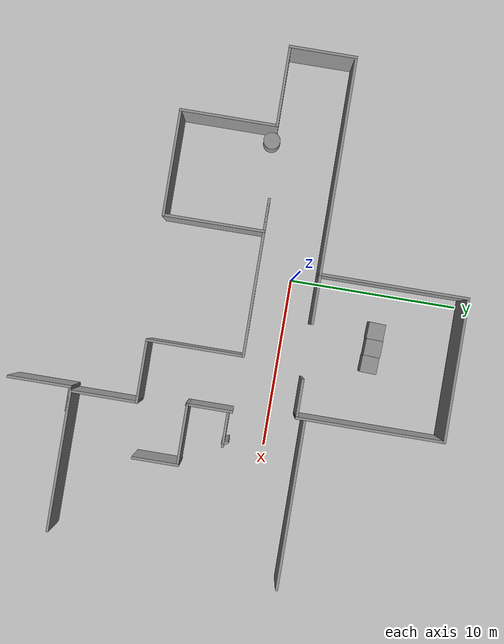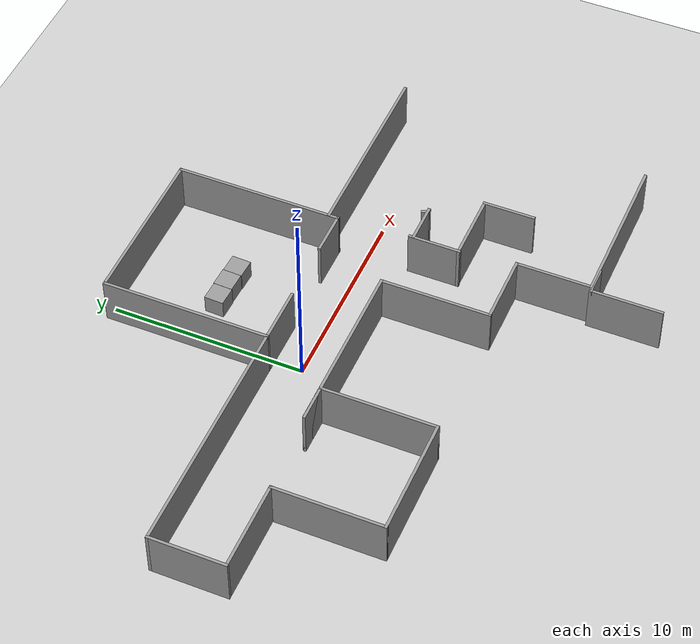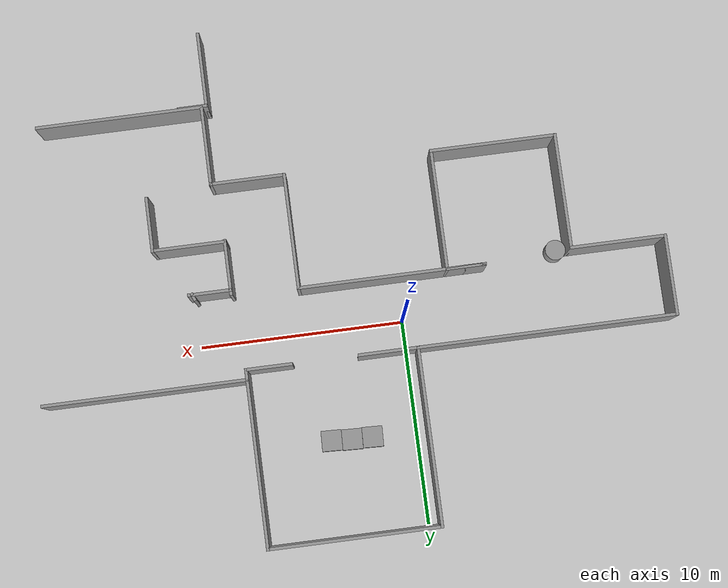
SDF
<sdf version="1.7">
 <world name="default">
  <model name="ground_plane">
   <static>1</static>
   <link name="link">
    <collision name="collision">
     <geometry><plane><normal>0 0 1</normal><size>100 100</size></plane></geometry>
     <surface><friction><ode><mu>100</mu><mu2>50</mu2></ode></friction></surface>
    </collision>
    <visual name="visual">
     <cast_shadows>0</cast_shadows>
     <geometry><plane><normal>0 0 1</normal><size>100 100</size></plane></geometry>
     <material>
      <script><uri>file://media/materials/scripts/gazebo.material</uri><name>Gazebo/Grey</name></script>
     </material>
    </visual>
   </link>
  </model>
  <model name="unit_box_clone">
   <pose>2.18484 5.44265 0.499995 1e-05 -0 -0.037521</pose>
   <link name="link">
    <inertial>
     <mass>1</mass>
     <inertia>
      <ixx>0.166667</ixx>
      <ixy>0</ixy>
      <ixz>0</ixz>
      <iyy>0.166667</iyy>
      <iyz>0</iyz>
      <izz>0.166667</izz>
     </inertia>
    </inertial>
    <collision name="collision"><geometry><box><size>1 1 1</size></box></geometry></collision>
    <visual name="visual">
     <geometry><box><size>1 1 1</size></box></geometry>
     <material>
      <script><name>Gazebo/Grey</name><uri>file://media/materials/scripts/gazebo.material</uri></script>
     </material>
    </visual>
   </link>
  </model>
  <model name="unit_box_clone_0">
   <pose>3.18636 5.43113 0.499995 -0 1e-05 -0.035691</pose>
   <link name="link">
    <inertial>
     <mass>1</mass>
     <inertia>
      <ixx>0.166667</ixx>
      <ixy>0</ixy>
      <ixz>0</ixz>
      <iyy>0.166667</iyy>
      <iyz>0</iyz>
      <izz>0.166667</izz>
     </inertia>
    </inertial>
    <collision name="collision"><geometry><box><size>1 1 1</size></box></geometry></collision>
    <visual name="visual">
     <geometry><box><size>1 1 1</size></box></geometry>
     <material>
      <script><name>Gazebo/Grey</name><uri>file://media/materials/scripts/gazebo.material</uri></script>
     </material>
    </visual>
   </link>
  </model>
  <model name="unit_box_clone_1">
   <pose>4.18492 5.37179 0.499995 0 1e-05 -0.035732</pose>
   <link name="link">
    <inertial>
     <mass>1</mass>
     <inertia>
      <ixx>0.166667</ixx>
      <ixy>0</ixy>
      <ixz>0</ixz>
      <iyy>0.166667</iyy>
      <iyz>0</iyz>
      <izz>0.166667</izz>
     </inertia>
    </inertial>
    <collision name="collision"><geometry><box><size>1 1 1</size></box></geometry></collision>
    <visual name="visual">
     <geometry><box><size>1 1 1</size></box></geometry>
     <material>
      <script><name>Gazebo/Grey</name><uri>file://media/materials/scripts/gazebo.material</uri></script>
     </material>
    </visual>
   </link>
  </model>
  <model name="unit_cylinder_clone">
   <pose>-7.94709 -2.49222 0.499997 3e-06 2e-06 0</pose>
   <link name="link">
    <inertial>
     <mass>1</mass>
     <inertia><ixx>0.145833</ixx><ixy>0</ixy><ixz>0</ixz><iyy>0.145833</iyy><iyz>0</iyz><izz>0.125</izz></inertia>
    </inertial>
    <collision name="collision">
     <geometry><cylinder><radius>0.5</radius><length>1</length></cylinder></geometry>
    </collision>
    <visual name="visual">
     <geometry><cylinder><radius>0.5</radius><length>1</length></cylinder></geometry>
     <material>
      <script><name>Gazebo/Grey</name><uri>file://media/materials/scripts/gazebo.material</uri></script>
     </material>
    </visual>
   </link>
  </model>
  <model name="complex_clutter_env">
   <link name="Wall_0">
    <pose>-25.125 0.163907 0 0 0 -1.5708</pose>
    <visual name="Wall_0_Visual">
     <pose>0 0 1.25 0 -0 0</pose>
     <geometry><box><size>4 0.15 2.5</size></box></geometry>
     <material>
      <script><uri>file://media/materials/scripts/gazebo.material</uri><name>Gazebo/Grey</name></script>
      <ambient>1 1 1 1</ambient>
      <shader type="pixel"/>
     </material>
     <meta><layer>0</layer></meta>
    </visual>
    <collision name="Wall_0_Collision">
     <pose>0 0 1.25 0 -0 0</pose>
     <geometry><box><size>4 0.15 2.5</size></box></geometry>
     <surface>
      <friction>
       <ode><mu>1</mu><mu2>1</mu2><fdir1>0 0 0</fdir1><slip1>0</slip1><slip2>0</slip2></ode>
       <torsional>
        <coefficient>1</coefficient>
        <patch_radius>0</patch_radius>
        <surface_radius>0</surface_radius>
        <use_patch_radius>1</use_patch_radius>
        <ode><slip>0</slip></ode>
       </torsional>
      </friction>
      <bounce><restitution_coefficient>0</restitution_coefficient><threshold>1e+06</threshold></bounce>
      <contact>
       <collide_without_contact>0</collide_without_contact>
       <collide_without_contact_bitmask>1</collide_without_contact_bitmask>
       <collide_bitmask>1</collide_bitmask>
       <ode>
        <soft_cfm>0</soft_cfm>
        <soft_erp>0.2</soft_erp>
        <kp>1e+13</kp>
        <kd>1</kd>
        <max_vel>0.01</max_vel>
        <min_depth>0</min_depth>
       </ode>
       <bullet>
        <split_impulse>1</split_impulse>
        <split_impulse_penetration_threshold>-0.01</split_impulse_penetration_threshold>
        <soft_cfm>0</soft_cfm>
        <soft_erp>0.2</soft_erp>
        <kp>1e+13</kp>
        <kd>1</kd>
       </bullet>
      </contact>
     </surface>
    </collision>
   </link>
   <link name="Wall_1">
    <pose>-22.825 -1.76109 0 0 -0 0</pose>
    <visual name="Wall_1_Visual">
     <pose>0 0 1.25 0 -0 0</pose>
     <geometry><box><size>4.75 0.15 2.5</size></box></geometry>
     <material>
      <script><uri>file://media/materials/scripts/gazebo.material</uri><name>Gazebo/Grey</name></script>
      <ambient>1 1 1 1</ambient>
      <shader type="pixel"/>
     </material>
     <meta><layer>0</layer></meta>
    </visual>
    <collision name="Wall_1_Collision">
     <pose>0 0 1.25 0 -0 0</pose>
     <geometry><box><size>4.75 0.15 2.5</size></box></geometry>
     <surface>
      <friction>
       <ode><mu>1</mu><mu2>1</mu2><fdir1>0 0 0</fdir1><slip1>0</slip1><slip2>0</slip2></ode>
       <torsional>
        <coefficient>1</coefficient>
        <patch_radius>0</patch_radius>
        <surface_radius>0</surface_radius>
        <use_patch_radius>1</use_patch_radius>
        <ode><slip>0</slip></ode>
       </torsional>
      </friction>
      <bounce><restitution_coefficient>0</restitution_coefficient><threshold>1e+06</threshold></bounce>
      <contact>
       <collide_without_contact>0</collide_without_contact>
       <collide_without_contact_bitmask>1</collide_without_contact_bitmask>
       <collide_bitmask>1</collide_bitmask>
       <ode>
        <soft_cfm>0</soft_cfm>
        <soft_erp>0.2</soft_erp>
        <kp>1e+13</kp>
        <kd>1</kd>
        <max_vel>0.01</max_vel>
        <min_depth>0</min_depth>
       </ode>
       <bullet>
        <split_impulse>1</split_impulse>
        <split_impulse_penetration_threshold>-0.01</split_impulse_penetration_threshold>
        <soft_cfm>0</soft_cfm>
        <soft_erp>0.2</soft_erp>
        <kp>1e+13</kp>
        <kd>1</kd>
       </bullet>
      </contact>
     </surface>
    </collision>
   </link>
   <link name="Wall_10">
    <pose>0.474999 -10.9611 0 0 -0 0</pose>
    <visual name="Wall_10_Visual">
     <pose>0 0 1.25 0 -0 0</pose>
     <geometry><box><size>8.25 0.15 2.5</size></box></geometry>
     <material>
      <script><uri>file://media/materials/scripts/gazebo.material</uri><name>Gazebo/Grey</name></script>
      <ambient>1 1 1 1</ambient>
      <shader type="pixel"/>
     </material>
     <meta><layer>0</layer></meta>
    </visual>
    <collision name="Wall_10_Collision">
     <pose>0 0 1.25 0 -0 0</pose>
     <geometry><box><size>8.25 0.15 2.5</size></box></geometry>
     <surface>
      <friction>
       <ode><mu>1</mu><mu2>1</mu2><fdir1>0 0 0</fdir1><slip1>0</slip1><slip2>0</slip2></ode>
       <torsional>
        <coefficient>1</coefficient>
        <patch_radius>0</patch_radius>
        <surface_radius>0</surface_radius>
        <use_patch_radius>1</use_patch_radius>
        <ode><slip>0</slip></ode>
       </torsional>
      </friction>
      <bounce><restitution_coefficient>0</restitution_coefficient><threshold>1e+06</threshold></bounce>
      <contact>
       <collide_without_contact>0</collide_without_contact>
       <collide_without_contact_bitmask>1</collide_without_contact_bitmask>
       <collide_bitmask>1</collide_bitmask>
       <ode>
        <soft_cfm>0</soft_cfm>
        <soft_erp>0.2</soft_erp>
        <kp>1e+13</kp>
        <kd>1</kd>
        <max_vel>0.01</max_vel>
        <min_depth>0</min_depth>
       </ode>
       <bullet>
        <split_impulse>1</split_impulse>
        <split_impulse_penetration_threshold>-0.01</split_impulse_penetration_threshold>
        <soft_cfm>0</soft_cfm>
        <soft_erp>0.2</soft_erp>
        <kp>1e+13</kp>
        <kd>1</kd>
       </bullet>
      </contact>
     </surface>
    </collision>
   </link>
   <link name="Wall_2">
    <pose>-20.525 -4.56109 0 0 0 -1.5708</pose>
    <visual name="Wall_2_Visual">
     <pose>0 0 1.25 0 -0 0</pose>
     <geometry><box><size>5.75 0.15 2.5</size></box></geometry>
     <material>
      <script><uri>file://media/materials/scripts/gazebo.material</uri><name>Gazebo/Grey</name></script>
      <ambient>1 1 1 1</ambient>
      <shader type="pixel"/>
     </material>
     <meta><layer>0</layer></meta>
    </visual>
    <collision name="Wall_2_Collision">
     <pose>0 0 1.25 0 -0 0</pose>
     <geometry><box><size>5.75 0.15 2.5</size></box></geometry>
     <surface>
      <friction>
       <ode><mu>1</mu><mu2>1</mu2><fdir1>0 0 0</fdir1><slip1>0</slip1><slip2>0</slip2></ode>
       <torsional>
        <coefficient>1</coefficient>
        <patch_radius>0</patch_radius>
        <surface_radius>0</surface_radius>
        <use_patch_radius>1</use_patch_radius>
        <ode><slip>0</slip></ode>
       </torsional>
      </friction>
      <bounce><restitution_coefficient>0</restitution_coefficient><threshold>1e+06</threshold></bounce>
      <contact>
       <collide_without_contact>0</collide_without_contact>
       <collide_without_contact_bitmask>1</collide_without_contact_bitmask>
       <collide_bitmask>1</collide_bitmask>
       <ode>
        <soft_cfm>0</soft_cfm>
        <soft_erp>0.2</soft_erp>
        <kp>1e+13</kp>
        <kd>1</kd>
        <max_vel>0.01</max_vel>
        <min_depth>0</min_depth>
       </ode>
       <bullet>
        <split_impulse>1</split_impulse>
        <split_impulse_penetration_threshold>-0.01</split_impulse_penetration_threshold>
        <soft_cfm>0</soft_cfm>
        <soft_erp>0.2</soft_erp>
        <kp>1e+13</kp>
        <kd>1</kd>
       </bullet>
      </contact>
     </surface>
    </collision>
   </link>
   <link name="Wall_20">
    <pose>-0.38502 -5.50822 0 0 -0 1.5708</pose>
    <visual name="Wall_20_Visual">
     <pose>0 0 1.25 0 -0 0</pose>
     <geometry><box><size>2.75 0.15 2.5</size></box></geometry>
     <material>
      <script><uri>file://media/materials/scripts/gazebo.material</uri><name>Gazebo/Grey</name></script>
      <ambient>1 1 1 1</ambient>
      <shader type="pixel"/>
     </material>
     <meta><layer>0</layer></meta>
    </visual>
    <collision name="Wall_20_Collision">
     <pose>0 0 1.25 0 -0 0</pose>
     <geometry><box><size>2.75 0.15 2.5</size></box></geometry>
     <surface>
      <friction>
       <ode><mu>1</mu><mu2>1</mu2><fdir1>0 0 0</fdir1><slip1>0</slip1><slip2>0</slip2></ode>
       <torsional>
        <coefficient>1</coefficient>
        <patch_radius>0</patch_radius>
        <surface_radius>0</surface_radius>
        <use_patch_radius>1</use_patch_radius>
        <ode><slip>0</slip></ode>
       </torsional>
      </friction>
      <bounce><restitution_coefficient>0</restitution_coefficient><threshold>1e+06</threshold></bounce>
      <contact>
       <collide_without_contact>0</collide_without_contact>
       <collide_without_contact_bitmask>1</collide_without_contact_bitmask>
       <collide_bitmask>1</collide_bitmask>
       <ode>
        <soft_cfm>0</soft_cfm>
        <soft_erp>0.2</soft_erp>
        <kp>1e+13</kp>
        <kd>1</kd>
        <max_vel>0.01</max_vel>
        <min_depth>0</min_depth>
       </ode>
       <bullet>
        <split_impulse>1</split_impulse>
        <split_impulse_penetration_threshold>-0.01</split_impulse_penetration_threshold>
        <soft_cfm>0</soft_cfm>
        <soft_erp>0.2</soft_erp>
        <kp>1e+13</kp>
        <kd>1</kd>
       </bullet>
      </contact>
     </surface>
    </collision>
   </link>
   <link name="Wall_21">
    <pose>-2.21136 -4.22012 0 0 -0 3.14159</pose>
    <inertial>
     <inertia><ixx>0</ixx><ixy>0</ixy><ixz>0</ixz><iyy>0</iyy><iyz>0</iyz><izz>0</izz></inertia>
     <mass>0</mass>
    </inertial>
    <visual name="Wall_21_Visual">
     <pose>0 0 1.25 0 -0 0</pose>
     <geometry><box><size>3.55406 0.15 2.5</size></box></geometry>
     <material>
      <script><uri>file://media/materials/scripts/gazebo.material</uri><name>Gazebo/Grey</name></script>
      <ambient>1 1 1 1</ambient>
      <shader type="pixel"/>
     </material>
     <meta><layer>0</layer></meta>
    </visual>
    <collision name="Wall_21_Collision">
     <pose>0 0 1.25 0 -0 0</pose>
     <geometry><box><size>3.55406 0.15 2.5</size></box></geometry>
     <surface>
      <friction>
       <ode><mu>1</mu><mu2>1</mu2><fdir1>0 0 0</fdir1><slip1>0</slip1><slip2>0</slip2></ode>
       <torsional>
        <coefficient>1</coefficient>
        <patch_radius>0</patch_radius>
        <surface_radius>0</surface_radius>
        <use_patch_radius>1</use_patch_radius>
        <ode><slip>0</slip></ode>
       </torsional>
      </friction>
      <bounce><restitution_coefficient>0</restitution_coefficient><threshold>1e+06</threshold></bounce>
      <contact>
       <collide_without_contact>0</collide_without_contact>
       <collide_without_contact_bitmask>1</collide_without_contact_bitmask>
       <collide_bitmask>1</collide_bitmask>
       <ode>
        <soft_cfm>0</soft_cfm>
        <soft_erp>0.2</soft_erp>
        <kp>1e+13</kp>
        <kd>1</kd>
        <max_vel>0.01</max_vel>
        <min_depth>0</min_depth>
       </ode>
       <bullet>
        <split_impulse>1</split_impulse>
        <split_impulse_penetration_threshold>-0.01</split_impulse_penetration_threshold>
        <soft_cfm>0</soft_cfm>
        <soft_erp>0.2</soft_erp>
        <kp>1e+13</kp>
        <kd>1</kd>
       </bullet>
      </contact>
     </surface>
    </collision>
   </link>
   <link name="Wall_22">
    <pose>-3.91022 -2.95498 0 0 -0 1.5708</pose>
    <visual name="Wall_22_Visual">
     <pose>0 0 1.25 0 -0 0</pose>
     <geometry><box><size>2.75 0.15 2.5</size></box></geometry>
     <material>
      <script><uri>file://media/materials/scripts/gazebo.material</uri><name>Gazebo/Grey</name></script>
      <ambient>1 1 1 1</ambient>
      <shader type="pixel"/>
     </material>
     <meta><layer>0</layer></meta>
    </visual>
    <collision name="Wall_22_Collision">
     <pose>0 0 1.25 0 -0 0</pose>
     <geometry><box><size>2.75 0.15 2.5</size></box></geometry>
     <surface>
      <friction>
       <ode><mu>1</mu><mu2>1</mu2><fdir1>0 0 0</fdir1><slip1>0</slip1><slip2>0</slip2></ode>
       <torsional>
        <coefficient>1</coefficient>
        <patch_radius>0</patch_radius>
        <surface_radius>0</surface_radius>
        <use_patch_radius>1</use_patch_radius>
        <ode><slip>0</slip></ode>
       </torsional>
      </friction>
      <bounce><restitution_coefficient>0</restitution_coefficient><threshold>1e+06</threshold></bounce>
      <contact>
       <collide_without_contact>0</collide_without_contact>
       <collide_without_contact_bitmask>1</collide_without_contact_bitmask>
       <collide_bitmask>1</collide_bitmask>
       <ode>
        <soft_cfm>0</soft_cfm>
        <soft_erp>0.2</soft_erp>
        <kp>1e+13</kp>
        <kd>1</kd>
        <max_vel>0.01</max_vel>
        <min_depth>0</min_depth>
       </ode>
       <bullet>
        <split_impulse>1</split_impulse>
        <split_impulse_penetration_threshold>-0.01</split_impulse_penetration_threshold>
        <soft_cfm>0</soft_cfm>
        <soft_erp>0.2</soft_erp>
        <kp>1e+13</kp>
        <kd>1</kd>
       </bullet>
      </contact>
     </surface>
    </collision>
   </link>
   <link name="Wall_28">
    <pose>-18.825 2.08891 0 0 -0 0</pose>
    <visual name="Wall_28_Visual">
     <pose>0 0 1.25 0 -0 0</pose>
     <geometry><box><size>12.75 0.15 2.5</size></box></geometry>
     <material>
      <script><uri>file://media/materials/scripts/gazebo.material</uri><name>Gazebo/Grey</name></script>
      <ambient>1 1 1 1</ambient>
      <shader type="pixel"/>
     </material>
     <meta><layer>0</layer></meta>
    </visual>
    <collision name="Wall_28_Collision">
     <pose>0 0 1.25 0 -0 0</pose>
     <geometry><box><size>12.75 0.15 2.5</size></box></geometry>
     <surface>
      <friction>
       <ode><mu>1</mu><mu2>1</mu2><fdir1>0 0 0</fdir1><slip1>0</slip1><slip2>0</slip2></ode>
       <torsional>
        <coefficient>1</coefficient>
        <patch_radius>0</patch_radius>
        <surface_radius>0</surface_radius>
        <use_patch_radius>1</use_patch_radius>
        <ode><slip>0</slip></ode>
       </torsional>
      </friction>
      <bounce><restitution_coefficient>0</restitution_coefficient><threshold>1e+06</threshold></bounce>
      <contact>
       <collide_without_contact>0</collide_without_contact>
       <collide_without_contact_bitmask>1</collide_without_contact_bitmask>
       <collide_bitmask>1</collide_bitmask>
       <ode>
        <soft_cfm>0</soft_cfm>
        <soft_erp>0.2</soft_erp>
        <kp>1e+13</kp>
        <kd>1</kd>
        <max_vel>0.01</max_vel>
        <min_depth>0</min_depth>
       </ode>
       <bullet>
        <split_impulse>1</split_impulse>
        <split_impulse_penetration_threshold>-0.01</split_impulse_penetration_threshold>
        <soft_cfm>0</soft_cfm>
        <soft_erp>0.2</soft_erp>
        <kp>1e+13</kp>
        <kd>1</kd>
       </bullet>
      </contact>
     </surface>
    </collision>
   </link>
   <link name="Wall_29">
    <pose>-12.525 6.38891 0 0 -0 1.5708</pose>
    <visual name="Wall_29_Visual">
     <pose>0 0 1.25 0 -0 0</pose>
     <geometry><box><size>8.75 0.15 2.5</size></box></geometry>
     <material>
      <script><uri>file://media/materials/scripts/gazebo.material</uri><name>Gazebo/Grey</name></script>
      <ambient>1 1 1 1</ambient>
      <shader type="pixel"/>
     </material>
     <meta><layer>0</layer></meta>
    </visual>
    <collision name="Wall_29_Collision">
     <pose>0 0 1.25 0 -0 0</pose>
     <geometry><box><size>8.75 0.15 2.5</size></box></geometry>
     <surface>
      <friction>
       <ode><mu>1</mu><mu2>1</mu2><fdir1>0 0 0</fdir1><slip1>0</slip1><slip2>0</slip2></ode>
       <torsional>
        <coefficient>1</coefficient>
        <patch_radius>0</patch_radius>
        <surface_radius>0</surface_radius>
        <use_patch_radius>1</use_patch_radius>
        <ode><slip>0</slip></ode>
       </torsional>
      </friction>
      <bounce><restitution_coefficient>0</restitution_coefficient><threshold>1e+06</threshold></bounce>
      <contact>
       <collide_without_contact>0</collide_without_contact>
       <collide_without_contact_bitmask>1</collide_without_contact_bitmask>
       <collide_bitmask>1</collide_bitmask>
       <ode>
        <soft_cfm>0</soft_cfm>
        <soft_erp>0.2</soft_erp>
        <kp>1e+13</kp>
        <kd>1</kd>
        <max_vel>0.01</max_vel>
        <min_depth>0</min_depth>
       </ode>
       <bullet>
        <split_impulse>1</split_impulse>
        <split_impulse_penetration_threshold>-0.01</split_impulse_penetration_threshold>
        <soft_cfm>0</soft_cfm>
        <soft_erp>0.2</soft_erp>
        <kp>1e+13</kp>
        <kd>1</kd>
       </bullet>
      </contact>
     </surface>
    </collision>
   </link>
   <link name="Wall_3">
    <pose>-17.475 -7.36109 0 0 -0 0</pose>
    <visual name="Wall_3_Visual">
     <pose>0 0 1.25 0 -0 0</pose>
     <geometry><box><size>6.25 0.15 2.5</size></box></geometry>
     <material>
      <script><uri>file://media/materials/scripts/gazebo.material</uri><name>Gazebo/Grey</name></script>
      <ambient>1 1 1 1</ambient>
      <shader type="pixel"/>
     </material>
     <meta><layer>0</layer></meta>
    </visual>
    <collision name="Wall_3_Collision">
     <pose>0 0 1.25 0 -0 0</pose>
     <geometry><box><size>6.25 0.15 2.5</size></box></geometry>
     <surface>
      <friction>
       <ode><mu>1</mu><mu2>1</mu2><fdir1>0 0 0</fdir1><slip1>0</slip1><slip2>0</slip2></ode>
       <torsional>
        <coefficient>1</coefficient>
        <patch_radius>0</patch_radius>
        <surface_radius>0</surface_radius>
        <use_patch_radius>1</use_patch_radius>
        <ode><slip>0</slip></ode>
       </torsional>
      </friction>
      <bounce><restitution_coefficient>0</restitution_coefficient><threshold>1e+06</threshold></bounce>
      <contact>
       <collide_without_contact>0</collide_without_contact>
       <collide_without_contact_bitmask>1</collide_without_contact_bitmask>
       <collide_bitmask>1</collide_bitmask>
       <ode>
        <soft_cfm>0</soft_cfm>
        <soft_erp>0.2</soft_erp>
        <kp>1e+13</kp>
        <kd>1</kd>
        <max_vel>0.01</max_vel>
        <min_depth>0</min_depth>
       </ode>
       <bullet>
        <split_impulse>1</split_impulse>
        <split_impulse_penetration_threshold>-0.01</split_impulse_penetration_threshold>
        <soft_cfm>0</soft_cfm>
        <soft_erp>0.2</soft_erp>
        <kp>1e+13</kp>
        <kd>1</kd>
       </bullet>
      </contact>
     </surface>
    </collision>
   </link>
   <link name="Wall_30">
    <pose>-8.35 10.6889 0 0 -0 0</pose>
    <visual name="Wall_30_Visual">
     <pose>0 0 1.25 0 -0 0</pose>
     <geometry><box><size>8.5 0.15 2.5</size></box></geometry>
     <material>
      <script><uri>file://media/materials/scripts/gazebo.material</uri><name>Gazebo/Grey</name></script>
      <ambient>1 1 1 1</ambient>
      <shader type="pixel"/>
     </material>
     <meta><layer>0</layer></meta>
    </visual>
    <collision name="Wall_30_Collision">
     <pose>0 0 1.25 0 -0 0</pose>
     <geometry><box><size>8.5 0.15 2.5</size></box></geometry>
     <surface>
      <friction>
       <ode><mu>1</mu><mu2>1</mu2><fdir1>0 0 0</fdir1><slip1>0</slip1><slip2>0</slip2></ode>
       <torsional>
        <coefficient>1</coefficient>
        <patch_radius>0</patch_radius>
        <surface_radius>0</surface_radius>
        <use_patch_radius>1</use_patch_radius>
        <ode><slip>0</slip></ode>
       </torsional>
      </friction>
      <bounce><restitution_coefficient>0</restitution_coefficient><threshold>1e+06</threshold></bounce>
      <contact>
       <collide_without_contact>0</collide_without_contact>
       <collide_without_contact_bitmask>1</collide_without_contact_bitmask>
       <collide_bitmask>1</collide_bitmask>
       <ode>
        <soft_cfm>0</soft_cfm>
        <soft_erp>0.2</soft_erp>
        <kp>1e+13</kp>
        <kd>1</kd>
        <max_vel>0.01</max_vel>
        <min_depth>0</min_depth>
       </ode>
       <bullet>
        <split_impulse>1</split_impulse>
        <split_impulse_penetration_threshold>-0.01</split_impulse_penetration_threshold>
        <soft_cfm>0</soft_cfm>
        <soft_erp>0.2</soft_erp>
        <kp>1e+13</kp>
        <kd>1</kd>
       </bullet>
      </contact>
     </surface>
    </collision>
   </link>
   <link name="Wall_31">
    <pose>-4.175 6.38891 0 0 0 -1.5708</pose>
    <visual name="Wall_31_Visual">
     <pose>0 0 1.25 0 -0 0</pose>
     <geometry><box><size>8.75 0.15 2.5</size></box></geometry>
     <material>
      <script><uri>file://media/materials/scripts/gazebo.material</uri><name>Gazebo/Grey</name></script>
      <ambient>1 1 1 1</ambient>
      <shader type="pixel"/>
     </material>
     <meta><layer>0</layer></meta>
    </visual>
    <collision name="Wall_31_Collision">
     <pose>0 0 1.25 0 -0 0</pose>
     <geometry><box><size>8.75 0.15 2.5</size></box></geometry>
     <surface>
      <friction>
       <ode><mu>1</mu><mu2>1</mu2><fdir1>0 0 0</fdir1><slip1>0</slip1><slip2>0</slip2></ode>
       <torsional>
        <coefficient>1</coefficient>
        <patch_radius>0</patch_radius>
        <surface_radius>0</surface_radius>
        <use_patch_radius>1</use_patch_radius>
        <ode><slip>0</slip></ode>
       </torsional>
      </friction>
      <bounce><restitution_coefficient>0</restitution_coefficient><threshold>1e+06</threshold></bounce>
      <contact>
       <collide_without_contact>0</collide_without_contact>
       <collide_without_contact_bitmask>1</collide_without_contact_bitmask>
       <collide_bitmask>1</collide_bitmask>
       <ode>
        <soft_cfm>0</soft_cfm>
        <soft_erp>0.2</soft_erp>
        <kp>1e+13</kp>
        <kd>1</kd>
        <max_vel>0.01</max_vel>
        <min_depth>0</min_depth>
       </ode>
       <bullet>
        <split_impulse>1</split_impulse>
        <split_impulse_penetration_threshold>-0.01</split_impulse_penetration_threshold>
        <soft_cfm>0</soft_cfm>
        <soft_erp>0.2</soft_erp>
        <kp>1e+13</kp>
        <kd>1</kd>
       </bullet>
      </contact>
     </surface>
    </collision>
   </link>
   <link name="Wall_4">
    <pose>-14.425 -4.43609 0 0 -0 1.5708</pose>
    <visual name="Wall_4_Visual">
     <pose>0 0 1.25 0 -0 0</pose>
     <geometry><box><size>6 0.15 2.5</size></box></geometry>
     <material>
      <script><uri>file://media/materials/scripts/gazebo.material</uri><name>Gazebo/Grey</name></script>
      <ambient>1 1 1 1</ambient>
      <shader type="pixel"/>
     </material>
     <meta><layer>0</layer></meta>
    </visual>
    <collision name="Wall_4_Collision">
     <pose>0 0 1.25 0 -0 0</pose>
     <geometry><box><size>6 0.15 2.5</size></box></geometry>
     <surface>
      <friction>
       <ode><mu>1</mu><mu2>1</mu2><fdir1>0 0 0</fdir1><slip1>0</slip1><slip2>0</slip2></ode>
       <torsional>
        <coefficient>1</coefficient>
        <patch_radius>0</patch_radius>
        <surface_radius>0</surface_radius>
        <use_patch_radius>1</use_patch_radius>
        <ode><slip>0</slip></ode>
       </torsional>
      </friction>
      <bounce><restitution_coefficient>0</restitution_coefficient><threshold>1e+06</threshold></bounce>
      <contact>
       <collide_without_contact>0</collide_without_contact>
       <collide_without_contact_bitmask>1</collide_without_contact_bitmask>
       <collide_bitmask>1</collide_bitmask>
       <ode>
        <soft_cfm>0</soft_cfm>
        <soft_erp>0.2</soft_erp>
        <kp>1e+13</kp>
        <kd>1</kd>
        <max_vel>0.01</max_vel>
        <min_depth>0</min_depth>
       </ode>
       <bullet>
        <split_impulse>1</split_impulse>
        <split_impulse_penetration_threshold>-0.01</split_impulse_penetration_threshold>
        <soft_cfm>0</soft_cfm>
        <soft_erp>0.2</soft_erp>
        <kp>1e+13</kp>
        <kd>1</kd>
       </bullet>
      </contact>
     </surface>
    </collision>
   </link>
   <link name="Wall_41">
    <pose>-3.825 -12.8111 0 0 -0 1.5708</pose>
    <visual name="Wall_41_Visual">
     <pose>0 0 1.25 0 -0 0</pose>
     <geometry><box><size>3.75 0.15 2.5</size></box></geometry>
     <material>
      <script><uri>file://media/materials/scripts/gazebo.material</uri><name>Gazebo/Grey</name></script>
      <ambient>1 1 1 1</ambient>
      <shader type="pixel"/>
     </material>
     <meta><layer>0</layer></meta>
    </visual>
    <collision name="Wall_41_Collision">
     <pose>0 0 1.25 0 -0 0</pose>
     <geometry><box><size>3.75 0.15 2.5</size></box></geometry>
     <surface>
      <friction>
       <ode><mu>1</mu><mu2>1</mu2><fdir1>0 0 0</fdir1><slip1>0</slip1><slip2>0</slip2></ode>
       <torsional>
        <coefficient>1</coefficient>
        <patch_radius>0</patch_radius>
        <surface_radius>0</surface_radius>
        <use_patch_radius>1</use_patch_radius>
        <ode><slip>0</slip></ode>
       </torsional>
      </friction>
      <bounce><restitution_coefficient>0</restitution_coefficient><threshold>1e+06</threshold></bounce>
      <contact>
       <collide_without_contact>0</collide_without_contact>
       <collide_without_contact_bitmask>1</collide_without_contact_bitmask>
       <collide_bitmask>1</collide_bitmask>
       <ode>
        <soft_cfm>0</soft_cfm>
        <soft_erp>0.2</soft_erp>
        <kp>1e+13</kp>
        <kd>1</kd>
        <max_vel>0.01</max_vel>
        <min_depth>0</min_depth>
       </ode>
       <bullet>
        <split_impulse>1</split_impulse>
        <split_impulse_penetration_threshold>-0.01</split_impulse_penetration_threshold>
        <soft_cfm>0</soft_cfm>
        <soft_erp>0.2</soft_erp>
        <kp>1e+13</kp>
        <kd>1</kd>
       </bullet>
      </contact>
     </surface>
    </collision>
   </link>
   <link name="Wall_42">
    <pose>-3.15 -11.0111 0 0 -0 0</pose>
    <visual name="Wall_42_Visual">
     <pose>0 0 1.25 0 -0 0</pose>
     <geometry><box><size>1.5 0.15 2.5</size></box></geometry>
     <material>
      <script><uri>file://media/materials/scripts/gazebo.material</uri><name>Gazebo/Grey</name></script>
      <ambient>1 1 1 1</ambient>
      <shader type="pixel"/>
     </material>
     <meta><layer>0</layer></meta>
    </visual>
    <collision name="Wall_42_Collision">
     <pose>0 0 1.25 0 -0 0</pose>
     <geometry><box><size>1.5 0.15 2.5</size></box></geometry>
     <surface>
      <friction>
       <ode><mu>1</mu><mu2>1</mu2><fdir1>0 0 0</fdir1><slip1>0</slip1><slip2>0</slip2></ode>
       <torsional>
        <coefficient>1</coefficient>
        <patch_radius>0</patch_radius>
        <surface_radius>0</surface_radius>
        <use_patch_radius>1</use_patch_radius>
        <ode><slip>0</slip></ode>
       </torsional>
      </friction>
      <bounce><restitution_coefficient>0</restitution_coefficient><threshold>1e+06</threshold></bounce>
      <contact>
       <collide_without_contact>0</collide_without_contact>
       <collide_without_contact_bitmask>1</collide_without_contact_bitmask>
       <collide_bitmask>1</collide_bitmask>
       <ode>
        <soft_cfm>0</soft_cfm>
        <soft_erp>0.2</soft_erp>
        <kp>1e+13</kp>
        <kd>1</kd>
        <max_vel>0.01</max_vel>
        <min_depth>0</min_depth>
       </ode>
       <bullet>
        <split_impulse>1</split_impulse>
        <split_impulse_penetration_threshold>-0.01</split_impulse_penetration_threshold>
        <soft_cfm>0</soft_cfm>
        <soft_erp>0.2</soft_erp>
        <kp>1e+13</kp>
        <kd>1</kd>
       </bullet>
      </contact>
     </surface>
    </collision>
   </link>
   <link name="Wall_5">
    <pose>-15.35 -1.51109 0 0 -0 3.14159</pose>
    <visual name="Wall_5_Visual">
     <pose>0 0 1.25 0 -0 0</pose>
     <geometry><box><size>2 0.15 2.5</size></box></geometry>
     <material>
      <script><uri>file://media/materials/scripts/gazebo.material</uri><name>Gazebo/Grey</name></script>
      <ambient>1 1 1 1</ambient>
      <shader type="pixel"/>
     </material>
     <meta><layer>0</layer></meta>
    </visual>
    <collision name="Wall_5_Collision">
     <pose>0 0 1.25 0 -0 0</pose>
     <geometry><box><size>2 0.15 2.5</size></box></geometry>
     <surface>
      <friction>
       <ode><mu>1</mu><mu2>1</mu2><fdir1>0 0 0</fdir1><slip1>0</slip1><slip2>0</slip2></ode>
       <torsional>
        <coefficient>1</coefficient>
        <patch_radius>0</patch_radius>
        <surface_radius>0</surface_radius>
        <use_patch_radius>1</use_patch_radius>
        <ode><slip>0</slip></ode>
       </torsional>
      </friction>
      <bounce><restitution_coefficient>0</restitution_coefficient><threshold>1e+06</threshold></bounce>
      <contact>
       <collide_without_contact>0</collide_without_contact>
       <collide_without_contact_bitmask>1</collide_without_contact_bitmask>
       <collide_bitmask>1</collide_bitmask>
       <ode>
        <soft_cfm>0</soft_cfm>
        <soft_erp>0.2</soft_erp>
        <kp>1e+13</kp>
        <kd>1</kd>
        <max_vel>0.01</max_vel>
        <min_depth>0</min_depth>
       </ode>
       <bullet>
        <split_impulse>1</split_impulse>
        <split_impulse_penetration_threshold>-0.01</split_impulse_penetration_threshold>
        <soft_cfm>0</soft_cfm>
        <soft_erp>0.2</soft_erp>
        <kp>1e+13</kp>
        <kd>1</kd>
       </bullet>
      </contact>
     </surface>
    </collision>
   </link>
   <link name="Wall_52">
    <pose>-11.1 2.08891 0 0 -0 0</pose>
    <visual name="Wall_52_Visual">
     <pose>0 0 1.25 0 -0 0</pose>
     <geometry><box><size>3 0.15 2.5</size></box></geometry>
     <material>
      <script><uri>file://media/materials/scripts/gazebo.material</uri><name>Gazebo/Grey</name></script>
      <ambient>1 1 1 1</ambient>
      <shader type="pixel"/>
     </material>
     <meta><layer>0</layer></meta>
    </visual>
    <collision name="Wall_52_Collision">
     <pose>0 0 1.25 0 -0 0</pose>
     <geometry><box><size>3 0.15 2.5</size></box></geometry>
     <surface>
      <friction>
       <ode><mu>1</mu><mu2>1</mu2><fdir1>0 0 0</fdir1><slip1>0</slip1><slip2>0</slip2></ode>
       <torsional>
        <coefficient>1</coefficient>
        <patch_radius>0</patch_radius>
        <surface_radius>0</surface_radius>
        <use_patch_radius>1</use_patch_radius>
        <ode><slip>0</slip></ode>
       </torsional>
      </friction>
      <bounce><restitution_coefficient>0</restitution_coefficient><threshold>1e+06</threshold></bounce>
      <contact>
       <collide_without_contact>0</collide_without_contact>
       <collide_without_contact_bitmask>1</collide_without_contact_bitmask>
       <collide_bitmask>1</collide_bitmask>
       <ode>
        <soft_cfm>0</soft_cfm>
        <soft_erp>0.2</soft_erp>
        <kp>1e+13</kp>
        <kd>1</kd>
        <max_vel>0.01</max_vel>
        <min_depth>0</min_depth>
       </ode>
       <bullet>
        <split_impulse>1</split_impulse>
        <split_impulse_penetration_threshold>-0.01</split_impulse_penetration_threshold>
        <soft_cfm>0</soft_cfm>
        <soft_erp>0.2</soft_erp>
        <kp>1e+13</kp>
        <kd>1</kd>
       </bullet>
      </contact>
     </surface>
    </collision>
   </link>
   <link name="Wall_54">
    <pose>-5.26961 2.09102 0 0 0 -0.001929</pose>
    <visual name="Wall_54_Visual">
     <pose>0 0 1.25 0 -0 0</pose>
     <geometry><box><size>2.33923 0.15 2.5</size></box></geometry>
     <material>
      <script><uri>file://media/materials/scripts/gazebo.material</uri><name>Gazebo/Grey</name></script>
      <ambient>1 1 1 1</ambient>
      <shader type="pixel"/>
     </material>
     <meta><layer>0</layer></meta>
    </visual>
    <collision name="Wall_54_Collision">
     <pose>0 0 1.25 0 -0 0</pose>
     <geometry><box><size>2.33923 0.15 2.5</size></box></geometry>
     <surface>
      <friction>
       <ode><mu>1</mu><mu2>1</mu2><fdir1>0 0 0</fdir1><slip1>0</slip1><slip2>0</slip2></ode>
       <torsional>
        <coefficient>1</coefficient>
        <patch_radius>0</patch_radius>
        <surface_radius>0</surface_radius>
        <use_patch_radius>1</use_patch_radius>
        <ode><slip>0</slip></ode>
       </torsional>
      </friction>
      <bounce><restitution_coefficient>0</restitution_coefficient><threshold>1e+06</threshold></bounce>
      <contact>
       <collide_without_contact>0</collide_without_contact>
       <collide_without_contact_bitmask>1</collide_without_contact_bitmask>
       <collide_bitmask>1</collide_bitmask>
       <ode>
        <soft_cfm>0</soft_cfm>
        <soft_erp>0.2</soft_erp>
        <kp>1e+13</kp>
        <kd>1</kd>
        <max_vel>0.01</max_vel>
        <min_depth>0</min_depth>
       </ode>
       <bullet>
        <split_impulse>1</split_impulse>
        <split_impulse_penetration_threshold>-0.01</split_impulse_penetration_threshold>
        <soft_cfm>0</soft_cfm>
        <soft_erp>0.2</soft_erp>
        <kp>1e+13</kp>
        <kd>1</kd>
       </bullet>
      </contact>
     </surface>
    </collision>
   </link>
   <link name="Wall_6">
    <pose>-11.725 -1.51109 0 0 -0 0</pose>
    <visual name="Wall_6_Visual">
     <pose>0 0 1.25 0 -0 0</pose>
     <geometry><box><size>9.25 0.15 2.5</size></box></geometry>
     <material>
      <script><uri>file://media/materials/scripts/gazebo.material</uri><name>Gazebo/Grey</name></script>
      <ambient>1 1 1 1</ambient>
      <shader type="pixel"/>
     </material>
     <meta><layer>0</layer></meta>
    </visual>
    <collision name="Wall_6_Collision">
     <pose>0 0 1.25 0 -0 0</pose>
     <geometry><box><size>9.25 0.15 2.5</size></box></geometry>
     <surface>
      <friction>
       <ode><mu>1</mu><mu2>1</mu2><fdir1>0 0 0</fdir1><slip1>0</slip1><slip2>0</slip2></ode>
       <torsional>
        <coefficient>1</coefficient>
        <patch_radius>0</patch_radius>
        <surface_radius>0</surface_radius>
        <use_patch_radius>1</use_patch_radius>
        <ode><slip>0</slip></ode>
       </torsional>
      </friction>
      <bounce><restitution_coefficient>0</restitution_coefficient><threshold>1e+06</threshold></bounce>
      <contact>
       <collide_without_contact>0</collide_without_contact>
       <collide_without_contact_bitmask>1</collide_without_contact_bitmask>
       <collide_bitmask>1</collide_bitmask>
       <ode>
        <soft_cfm>0</soft_cfm>
        <soft_erp>0.2</soft_erp>
        <kp>1e+13</kp>
        <kd>1</kd>
        <max_vel>0.01</max_vel>
        <min_depth>0</min_depth>
       </ode>
       <bullet>
        <split_impulse>1</split_impulse>
        <split_impulse_penetration_threshold>-0.01</split_impulse_penetration_threshold>
        <soft_cfm>0</soft_cfm>
        <soft_erp>0.2</soft_erp>
        <kp>1e+13</kp>
        <kd>1</kd>
       </bullet>
      </contact>
     </surface>
    </collision>
   </link>
   <link name="Wall_69">
    <pose>0.780947 2.57059 0 0 -0 0</pose>
    <visual name="Wall_69_Visual">
     <pose>0 0 1.25 0 -0 0</pose>
     <geometry><box><size>10 0.15 2.5</size></box></geometry>
     <material>
      <script><uri>file://media/materials/scripts/gazebo.material</uri><name>Gazebo/Grey</name></script>
      <ambient>1 1 1 1</ambient>
      <shader type="pixel"/>
     </material>
     <meta><layer>0</layer></meta>
    </visual>
    <collision name="Wall_69_Collision">
     <pose>0 0 1.25 0 -0 0</pose>
     <geometry><box><size>10 0.15 2.5</size></box></geometry>
     <surface>
      <friction>
       <ode><mu>1</mu><mu2>1</mu2><fdir1>0 0 0</fdir1><slip1>0</slip1><slip2>0</slip2></ode>
       <torsional>
        <coefficient>1</coefficient>
        <patch_radius>0</patch_radius>
        <surface_radius>0</surface_radius>
        <use_patch_radius>1</use_patch_radius>
        <ode><slip>0</slip></ode>
       </torsional>
      </friction>
      <bounce><restitution_coefficient>0</restitution_coefficient><threshold>1e+06</threshold></bounce>
      <contact>
       <collide_without_contact>0</collide_without_contact>
       <collide_without_contact_bitmask>1</collide_without_contact_bitmask>
       <collide_bitmask>1</collide_bitmask>
       <ode>
        <soft_cfm>0</soft_cfm>
        <soft_erp>0.2</soft_erp>
        <kp>1e+13</kp>
        <kd>1</kd>
        <max_vel>0.01</max_vel>
        <min_depth>0</min_depth>
       </ode>
       <bullet>
        <split_impulse>1</split_impulse>
        <split_impulse_penetration_threshold>-0.01</split_impulse_penetration_threshold>
        <soft_cfm>0</soft_cfm>
        <soft_erp>0.2</soft_erp>
        <kp>1e+13</kp>
        <kd>1</kd>
       </bullet>
      </contact>
     </surface>
    </collision>
   </link>
   <link name="Wall_7">
    <pose>-7.175 -4.31109 0 0 0 -1.5708</pose>
    <visual name="Wall_7_Visual">
     <pose>0 0 1.25 0 -0 0</pose>
     <geometry><box><size>5.75 0.15 2.5</size></box></geometry>
     <material>
      <script><uri>file://media/materials/scripts/gazebo.material</uri><name>Gazebo/Grey</name></script>
      <ambient>1 1 1 1</ambient>
      <shader type="pixel"/>
     </material>
     <meta><layer>0</layer></meta>
    </visual>
    <collision name="Wall_7_Collision">
     <pose>0 0 1.25 0 -0 0</pose>
     <geometry><box><size>5.75 0.15 2.5</size></box></geometry>
     <surface>
      <friction>
       <ode><mu>1</mu><mu2>1</mu2><fdir1>0 0 0</fdir1><slip1>0</slip1><slip2>0</slip2></ode>
       <torsional>
        <coefficient>1</coefficient>
        <patch_radius>0</patch_radius>
        <surface_radius>0</surface_radius>
        <use_patch_radius>1</use_patch_radius>
        <ode><slip>0</slip></ode>
       </torsional>
      </friction>
      <bounce><restitution_coefficient>0</restitution_coefficient><threshold>1e+06</threshold></bounce>
      <contact>
       <collide_without_contact>0</collide_without_contact>
       <collide_without_contact_bitmask>1</collide_without_contact_bitmask>
       <collide_bitmask>1</collide_bitmask>
       <ode>
        <soft_cfm>0</soft_cfm>
        <soft_erp>0.2</soft_erp>
        <kp>1e+13</kp>
        <kd>1</kd>
        <max_vel>0.01</max_vel>
        <min_depth>0</min_depth>
       </ode>
       <bullet>
        <split_impulse>1</split_impulse>
        <split_impulse_penetration_threshold>-0.01</split_impulse_penetration_threshold>
        <soft_cfm>0</soft_cfm>
        <soft_erp>0.2</soft_erp>
        <kp>1e+13</kp>
        <kd>1</kd>
       </bullet>
      </contact>
     </surface>
    </collision>
   </link>
   <link name="Wall_73">
    <pose>-2.89205 -1.84076 0 0 -0 0</pose>
    <inertial>
     <inertia><ixx>0</ixx><ixy>0</ixy><ixz>0</ixz><iyy>0</iyy><iyz>0</iyz><izz>0</izz></inertia>
     <mass>0</mass>
    </inertial>
    <visual name="Wall_73_Visual">
     <pose>0 0 1.25 0 -0 0</pose>
     <geometry><box><size>2.15459 0.15 2.5</size></box></geometry>
     <material>
      <script><uri>file://media/materials/scripts/gazebo.material</uri><name>Gazebo/Grey</name></script>
      <ambient>1 1 1 1</ambient>
      <shader type="pixel"/>
     </material>
     <meta><layer>0</layer></meta>
    </visual>
    <collision name="Wall_73_Collision">
     <pose>0 0 1.25 0 -0 0</pose>
     <geometry><box><size>2.15459 0.15 2.5</size></box></geometry>
     <surface>
      <friction>
       <ode><mu>1</mu><mu2>1</mu2><fdir1>0 0 0</fdir1><slip1>0</slip1><slip2>0</slip2></ode>
       <torsional>
        <coefficient>1</coefficient>
        <patch_radius>0</patch_radius>
        <surface_radius>0</surface_radius>
        <use_patch_radius>1</use_patch_radius>
        <ode><slip>0</slip></ode>
       </torsional>
      </friction>
      <bounce><restitution_coefficient>0</restitution_coefficient><threshold>1e+06</threshold></bounce>
      <contact>
       <collide_without_contact>0</collide_without_contact>
       <collide_without_contact_bitmask>1</collide_without_contact_bitmask>
       <collide_bitmask>1</collide_bitmask>
       <ode>
        <soft_cfm>0</soft_cfm>
        <soft_erp>0.2</soft_erp>
        <kp>1e+13</kp>
        <kd>1</kd>
        <max_vel>0.01</max_vel>
        <min_depth>0</min_depth>
       </ode>
       <bullet>
        <split_impulse>1</split_impulse>
        <split_impulse_penetration_threshold>-0.01</split_impulse_penetration_threshold>
        <soft_cfm>0</soft_cfm>
        <soft_erp>0.2</soft_erp>
        <kp>1e+13</kp>
        <kd>1</kd>
       </bullet>
      </contact>
     </surface>
    </collision>
   </link>
   <link name="Wall_74">
    <pose>-2.08502 -1.73322 0 0 0 -1.19029</pose>
    <visual name="Wall_74_Visual">
     <pose>0 0 1.25 0 -0 0</pose>
     <geometry><box><size>0.419258 0.15 2.5</size></box></geometry>
     <material>
      <script><uri>file://media/materials/scripts/gazebo.material</uri><name>Gazebo/Grey</name></script>
      <ambient>1 1 1 1</ambient>
      <shader type="pixel"/>
     </material>
     <meta><layer>0</layer></meta>
    </visual>
    <collision name="Wall_74_Collision">
     <pose>0 0 1.25 0 -0 0</pose>
     <geometry><box><size>0.419258 0.15 2.5</size></box></geometry>
     <surface>
      <friction>
       <ode><mu>1</mu><mu2>1</mu2><fdir1>0 0 0</fdir1><slip1>0</slip1><slip2>0</slip2></ode>
       <torsional>
        <coefficient>1</coefficient>
        <patch_radius>0</patch_radius>
        <surface_radius>0</surface_radius>
        <use_patch_radius>1</use_patch_radius>
        <ode><slip>0</slip></ode>
       </torsional>
      </friction>
      <bounce><restitution_coefficient>0</restitution_coefficient><threshold>1e+06</threshold></bounce>
      <contact>
       <collide_without_contact>0</collide_without_contact>
       <collide_without_contact_bitmask>1</collide_without_contact_bitmask>
       <collide_bitmask>1</collide_bitmask>
       <ode>
        <soft_cfm>0</soft_cfm>
        <soft_erp>0.2</soft_erp>
        <kp>1e+13</kp>
        <kd>1</kd>
        <max_vel>0.01</max_vel>
        <min_depth>0</min_depth>
       </ode>
       <bullet>
        <split_impulse>1</split_impulse>
        <split_impulse_penetration_threshold>-0.01</split_impulse_penetration_threshold>
        <soft_cfm>0</soft_cfm>
        <soft_erp>0.2</soft_erp>
        <kp>1e+13</kp>
        <kd>1</kd>
       </bullet>
      </contact>
     </surface>
    </collision>
   </link>
   <link name="Wall_8">
    <pose>-5.375 -7.11109 0 0 -0 0</pose>
    <visual name="Wall_8_Visual">
     <pose>0 0 1.25 0 -0 0</pose>
     <geometry><box><size>3.75 0.15 2.5</size></box></geometry>
     <material>
      <script><uri>file://media/materials/scripts/gazebo.material</uri><name>Gazebo/Grey</name></script>
      <ambient>1 1 1 1</ambient>
      <shader type="pixel"/>
     </material>
     <meta><layer>0</layer></meta>
    </visual>
    <collision name="Wall_8_Collision">
     <pose>0 0 1.25 0 -0 0</pose>
     <geometry><box><size>3.75 0.15 2.5</size></box></geometry>
     <surface>
      <friction>
       <ode><mu>1</mu><mu2>1</mu2><fdir1>0 0 0</fdir1><slip1>0</slip1><slip2>0</slip2></ode>
       <torsional>
        <coefficient>1</coefficient>
        <patch_radius>0</patch_radius>
        <surface_radius>0</surface_radius>
        <use_patch_radius>1</use_patch_radius>
        <ode><slip>0</slip></ode>
       </torsional>
      </friction>
      <bounce><restitution_coefficient>0</restitution_coefficient><threshold>1e+06</threshold></bounce>
      <contact>
       <collide_without_contact>0</collide_without_contact>
       <collide_without_contact_bitmask>1</collide_without_contact_bitmask>
       <collide_bitmask>1</collide_bitmask>
       <ode>
        <soft_cfm>0</soft_cfm>
        <soft_erp>0.2</soft_erp>
        <kp>1e+13</kp>
        <kd>1</kd>
        <max_vel>0.01</max_vel>
        <min_depth>0</min_depth>
       </ode>
       <bullet>
        <split_impulse>1</split_impulse>
        <split_impulse_penetration_threshold>-0.01</split_impulse_penetration_threshold>
        <soft_cfm>0</soft_cfm>
        <soft_erp>0.2</soft_erp>
        <kp>1e+13</kp>
        <kd>1</kd>
       </bullet>
      </contact>
     </surface>
    </collision>
   </link>
   <link name="Wall_9">
    <pose>-3.575 -9.03609 0 0 0 -1.5708</pose>
    <visual name="Wall_9_Visual">
     <pose>0 0 1.25 0 -0 0</pose>
     <geometry><box><size>4 0.15 2.5</size></box></geometry>
     <material>
      <script><uri>file://media/materials/scripts/gazebo.material</uri><name>Gazebo/Grey</name></script>
      <ambient>1 1 1 1</ambient>
      <shader type="pixel"/>
     </material>
     <meta><layer>0</layer></meta>
    </visual>
    <collision name="Wall_9_Collision">
     <pose>0 0 1.25 0 -0 0</pose>
     <geometry><box><size>4 0.15 2.5</size></box></geometry>
     <surface>
      <friction>
       <ode><mu>1</mu><mu2>1</mu2><fdir1>0 0 0</fdir1><slip1>0</slip1><slip2>0</slip2></ode>
       <torsional>
        <coefficient>1</coefficient>
        <patch_radius>0</patch_radius>
        <surface_radius>0</surface_radius>
        <use_patch_radius>1</use_patch_radius>
        <ode><slip>0</slip></ode>
       </torsional>
      </friction>
      <bounce><restitution_coefficient>0</restitution_coefficient><threshold>1e+06</threshold></bounce>
      <contact>
       <collide_without_contact>0</collide_without_contact>
       <collide_without_contact_bitmask>1</collide_without_contact_bitmask>
       <collide_bitmask>1</collide_bitmask>
       <ode>
        <soft_cfm>0</soft_cfm>
        <soft_erp>0.2</soft_erp>
        <kp>1e+13</kp>
        <kd>1</kd>
        <max_vel>0.01</max_vel>
        <min_depth>0</min_depth>
       </ode>
       <bullet>
        <split_impulse>1</split_impulse>
        <split_impulse_penetration_threshold>-0.01</split_impulse_penetration_threshold>
        <soft_cfm>0</soft_cfm>
        <soft_erp>0.2</soft_erp>
        <kp>1e+13</kp>
        <kd>1</kd>
       </bullet>
      </contact>
     </surface>
    </collision>
   </link>
   <static>1</static>
   <pose>12.0029 -0.563606 0 0 -0 0</pose>
  </model>
 </world>
</sdf>
